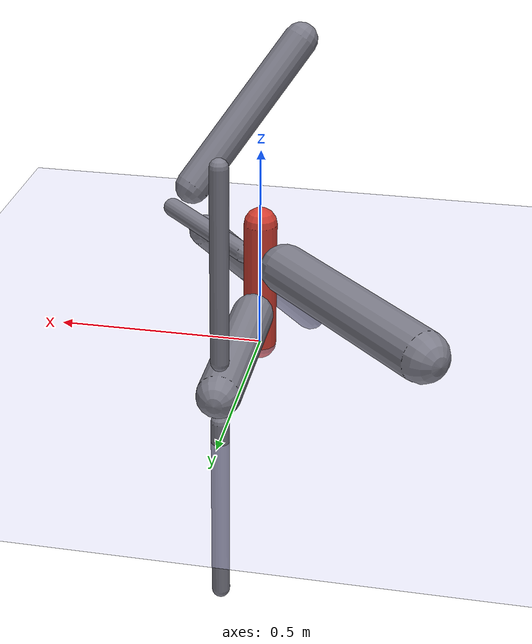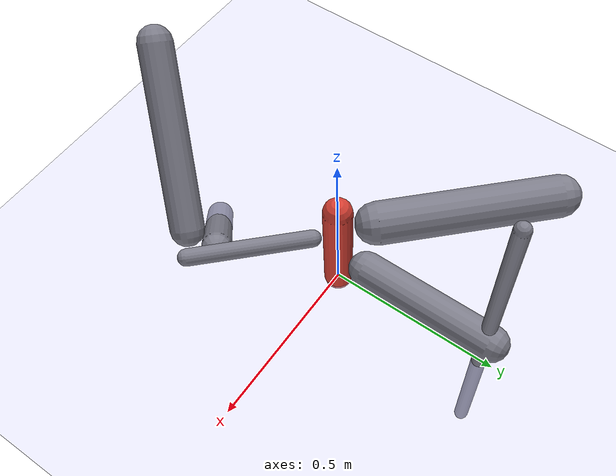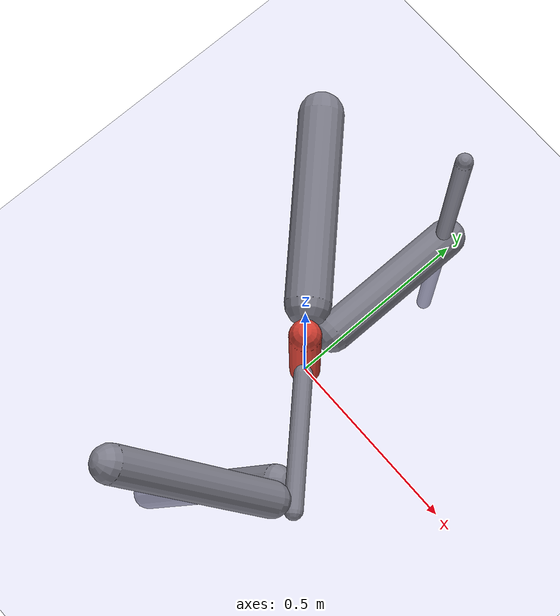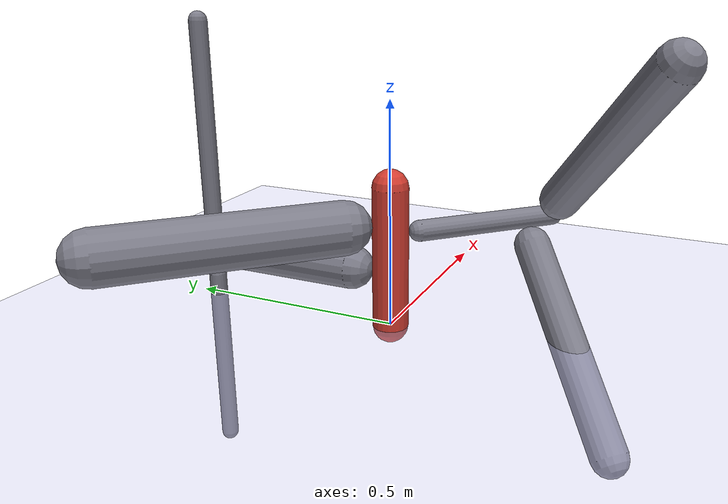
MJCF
<?xml version='1.0' encoding='UTF-8'?>
<mujoco model="robot_model">
  <worldbody>
    <light name="light" pos="0 -3 10" dir="0 0.5 -1" diffuse=".8 .8 .8" specular="0.1 0.1 0.1"/>
    <geom name="floor" type="plane" size="10.0 10.0 0.1" pos="0 0 0" rgba="0.8 0.8 1 1" contype="2" conaffinity="1"/>
    <body name="limb0" pos="0 0 0">
      <geom name="limb0_geom" type="capsule" fromto="0 0 0 0 0 0.31554126083685335" size="0.04" density="588.2781170712683" rgba="0.85 0.25 0.2 1" contype="1" conaffinity="2"/>
      <site type="sphere" size="0.01" name="limb0_site0" pos="0.047821717754763564 -0.047821717754763585 0.21204211106625703" quat="0.7071067811865476 0.5000000000000001 0.49999999999999983 0.0"/>
      <site type="sphere" size="0.01" name="limb0_site1" pos="-0.07284388772396712 0.07284388772396712 0.2390947152210313" quat="0.7071067811865476 -0.5 -0.4999999999999999 0.0"/>
      <site type="sphere" size="0.01" name="limb0_site2" pos="5.717835667706295e-18 0.09337934287154917 0.12278405739487959" quat="0.7071067811865476 -0.7071067811865475 4.329780281177466e-17 0.0"/>
      <freejoint name="limb0_root"/>
      <body name="limb1" pos="0.047821717754763564 -0.047821717754763585 0.21204211106625703" quat="0.7071067811865476 0.5000000000000001 0.49999999999999983 0.0">
        <geom name="limb1_geom" type="capsule" fromto="0 0 0 0 0 0.3321329543947403" size="0.023630121824764875" density="638.956906255138" rgba="0.5 0.5 0.55 1" contype="1" conaffinity="2"/>
        <site type="sphere" size="0.01" name="limb1_site0" pos="-1.2516668809950674e-17 -0.0681375714133265 0.25525053151050586" quat="0.7071067811865476 0.7071067811865475 -1.2989340843532398e-16 0.0"/>
        <site type="sphere" size="0.01" name="limb1_site1" pos="-0.07279444788635324 8.91474875997213e-18 0.31705096090663826" quat="0.7071067811865476 -8.659560562354932e-17 -0.7071067811865475 0.0"/>
        <body name="limb2" pos="-1.2516668809950674e-17 -0.0681375714133265 0.25525053151050586" quat="0.7071067811865476 0.7071067811865475 -1.2989340843532398e-16 0.0">
          <geom name="limb2_geom" type="capsule" fromto="0 0 0 0 0 0.48539464839316393" size="0.04050744958856163" density="874.7445092031319" rgba="0.5 0.5 0.55 1" contype="1" conaffinity="2"/>
          <joint name="joint_limb1_limb2_0" type="hinge" axis="1 0 0" range="-53.63992840341266 53.63992840341266" damping="1.004737146046283"/>
        </body>
        <body name="limb3" pos="-0.07279444788635324 8.91474875997213e-18 0.31705096090663826" quat="0.7071067811865476 -8.659560562354932e-17 -0.7071067811865475 0.0">
          <geom name="limb3_geom" type="capsule" fromto="0 0 0 0 0 0.470861821227147" size="0.045164326061588364" density="752.3017237726272" rgba="0.5 0.5 0.55 1" contype="1" conaffinity="2"/>
          <joint name="joint_limb1_limb3_0" type="hinge" axis="1 0 0" range="-62.522862484907556 62.522862484907556" damping="1.1443977256658364"/>
        </body>
        <joint name="joint_limb0_limb1_0" type="hinge" axis="1 0 0" range="-114.21131105064978 114.21131105064978" damping="1.7680002300420967"/>
      </body>
      <body name="limb4" pos="-0.07284388772396712 0.07284388772396712 0.2390947152210313" quat="0.7071067811865476 -0.5 -0.4999999999999999 0.0">
        <geom name="limb4_geom" type="capsule" fromto="0 0 0 0 0 0.5" size="0.059016813955217295" density="834.1294837610527" rgba="0.5 0.5 0.55 1" contype="1" conaffinity="2"/>
        <joint name="joint_limb0_limb4_0" type="hinge" axis="0 1 0" range="-72.93121601967704 72.93121601967704" damping="2.7707524106283827"/>
      </body>
      <body name="limb5" pos="5.717835667706295e-18 0.09337934287154917 0.12278405739487959" quat="0.7071067811865476 -0.7071067811865475 4.329780281177466e-17 0.0">
        <geom name="limb5_geom" type="capsule" fromto="0 0 0 0 0 0.38445715119589996" size="0.04937934287154917" density="1145.6477492907027" rgba="0.5 0.5 0.55 1" contype="1" conaffinity="2"/>
        <site type="sphere" size="0.01" name="limb5_site0" pos="4.529208927165191e-18 0.07396759507016396 0.36800629874894675" quat="0.7071067811865476 -0.7071067811865475 4.329780281177466e-17 0.0"/>
        <site type="sphere" size="0.01" name="limb5_site1" pos="-1.3587626781495574e-17 -0.07396759507016396 0.36800629874894675" quat="0.7071067811865476 0.7071067811865475 -1.2989340843532398e-16 0.0"/>
        <body name="limb6" pos="4.529208927165191e-18 0.07396759507016396 0.36800629874894675" quat="0.7071067811865476 -0.7071067811865475 4.329780281177466e-17 0.0">
          <geom name="limb6_geom" type="capsule" fromto="0 0 0 0 0 0.4454560360982303" size="0.020588252198614772" density="1184.9560320530754" rgba="0.5 0.5 0.55 1" contype="1" conaffinity="2"/>
          <joint name="joint_limb5_limb6_0" type="hinge" axis="0 0 1" range="-107.10981394243396 107.10981394243396" damping="0.4663874587154333"/>
        </body>
        <body name="limb7" pos="-1.3587626781495574e-17 -0.07396759507016396 0.36800629874894675" quat="0.7071067811865476 0.7071067811865475 -1.2989340843532398e-16 0.0">
          <geom name="limb7_geom" type="capsule" fromto="0 0 0 0 0 0.4454560360982303" size="0.020588252198614772" density="1184.9560320530754" rgba="0.5 0.5 0.55 1" contype="1" conaffinity="2"/>
          <joint name="joint_limb5_limb7_0" type="hinge" axis="0 0 1" range="-107.10981394243396 107.10981394243396" damping="0.4663874587154333"/>
        </body>
        <joint name="joint_limb0_limb5_0" type="hinge" axis="1 0 0" range="-120.0 120.0" damping="2.9219158044579965"/>
      </body>
    </body>
  </worldbody>
  <actuator>
    <position name="position_actuator_joint_limb0_limb1_0" joint="joint_limb0_limb1_0" gear="1.047665252367243" inheritrange="1" forcerange="-27.000994465317653 27.000994465317653" forcelimited="true" kp="100.0"/>
    <position name="position_actuator_joint_limb1_limb2_0" joint="joint_limb1_limb2_0" gear="1.3218644057568048" inheritrange="1" forcerange="-12.161454886544647 12.161454886544647" forcelimited="true" kp="100.0"/>
    <position name="position_actuator_joint_limb1_limb3_0" joint="joint_limb1_limb3_0" gear="1.4303201780230668" inheritrange="1" forcerange="-12.801583793609945 12.801583793609945" forcelimited="true" kp="100.0"/>
    <position name="position_actuator_joint_limb0_limb4_0" joint="joint_limb0_limb4_0" gear="1.6786785510707112" inheritrange="1" forcerange="-26.40889081580141 26.40889081580141" forcelimited="true" kp="100.0"/>
    <position name="position_actuator_joint_limb0_limb5_0" joint="joint_limb0_limb5_0" gear="1.7174498397575233" inheritrange="1" forcerange="-27.22097134314467 27.22097134314467" forcelimited="true" kp="100.0"/>
    <position name="position_actuator_joint_limb5_limb6_0" joint="joint_limb5_limb6_0" gear="2.0" inheritrange="1" forcerange="-3.7310996697234664 3.7310996697234664" forcelimited="true" kp="100.0"/>
    <position name="position_actuator_joint_limb5_limb7_0" joint="joint_limb5_limb7_0" gear="2.0" inheritrange="1" forcerange="-3.7310996697234664 3.7310996697234664" forcelimited="true" kp="100.0"/>
  </actuator>
  <contact>
    <pair geom1="limb0_geom" geom2="limb1_geom"/>
    <pair geom1="limb1_geom" geom2="limb2_geom"/>
    <pair geom1="limb1_geom" geom2="limb3_geom"/>
    <pair geom1="limb0_geom" geom2="limb4_geom"/>
    <pair geom1="limb0_geom" geom2="limb5_geom"/>
    <pair geom1="limb5_geom" geom2="limb6_geom"/>
    <pair geom1="limb5_geom" geom2="limb7_geom"/>
  </contact>
</mujoco>
